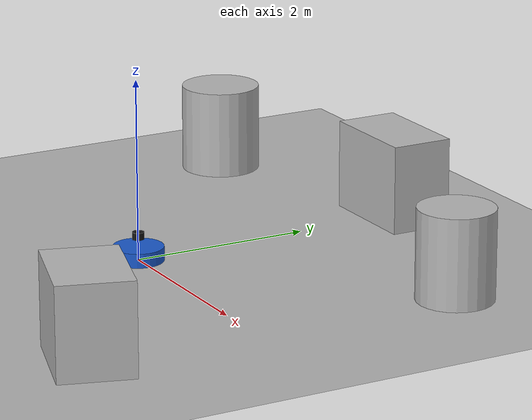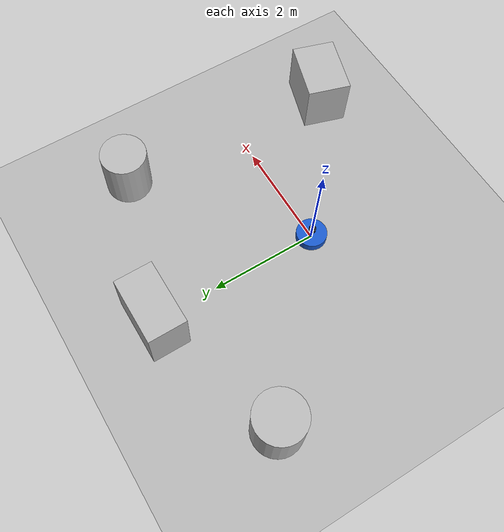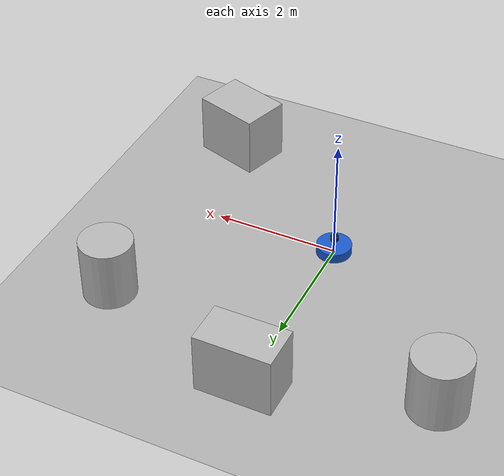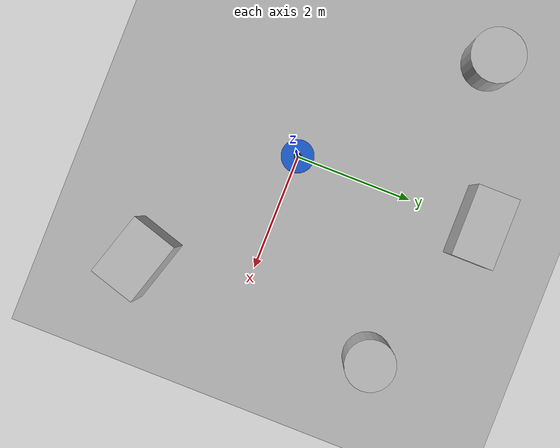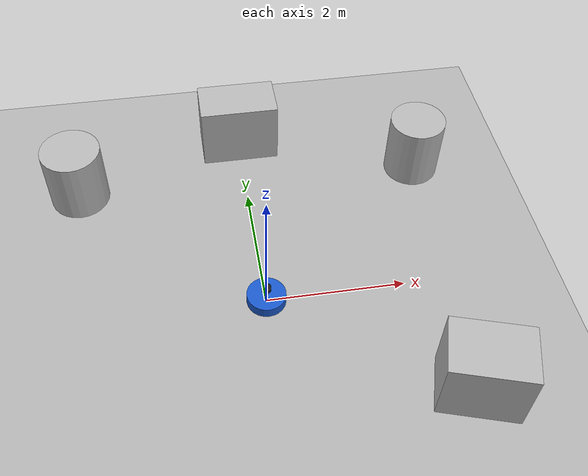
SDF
<?xml version="1.0"?>
<sdf version="1.8">
  <world name="maintenance_world">
    <physics name="1ms" type="ignored">
      <max_step_size>0.001</max_step_size>
      <real_time_factor>1.0</real_time_factor>
    </physics>

    <plugin filename="libignition-gazebo-physics-system.so" name="ignition::gazebo::systems::Physics"/>
    <plugin filename="libignition-gazebo-user-commands-system.so" name="ignition::gazebo::systems::UserCommands"/>
    <plugin filename="libignition-gazebo-scene-broadcaster-system.so" name="ignition::gazebo::systems::SceneBroadcaster"/>
    <plugin filename="libignition-gazebo-sensors-system.so" name="ignition::gazebo::systems::Sensors">
      <render_engine>ogre2</render_engine>
    </plugin>

    <gui fullscreen="0">
      <plugin filename="MinimalScene" name="3D View">
        <ignition-gui>
          <title>3D View</title>
          <property type="bool" key="showTitleBar">false</property>
          <property type="string" key="state">docked</property>
        </ignition-gui>
	<engine>ogre2</engine>
        <scene>scene</scene>
        <ambient_light>0.5 0.5 0.5</ambient_light>
        <background_color>0.75 0.75 0.75</background_color>
        <camera_pose>-6 -6 5 0 0.55 0.78</camera_pose>
      </plugin>
      <plugin filename="WorldControl" name="World control">
        <ignition-gui><property type="string" key="state">floating</property></ignition-gui>
        <play_pause>true</play_pause><step>true</step><start_paused>false</start_paused>
      </plugin>
      <plugin filename="WorldStats" name="World stats">
        <ignition-gui><property type="string" key="state">floating</property></ignition-gui>
        <sim_time>true</sim_time><real_time>true</real_time><real_time_factor>true</real_time_factor><iterations>true</iterations>
      </plugin>
    </gui>

    <light type="directional" name="sun">
      <pose>0 0 10 0 0 0</pose>
      <diffuse>0.8 0.8 0.8 1</diffuse>
      <specular>0.2 0.2 0.2 1</specular>
      <direction>-0.5 0.2 -0.9</direction>
    </light>

    <model name="ground_plane"><static>true</static><link name="link">
      <collision name="collision"><geometry><plane><normal>0 0 1</normal><size>20 20</size></plane></geometry></collision>
      <visual name="visual"><geometry><plane><normal>0 0 1</normal><size>20 20</size></plane></geometry>
        <material><ambient>0.7 0.7 0.7 1</ambient><diffuse>0.7 0.7 0.7 1</diffuse></material></visual>
    </link></model>

    <model name="maintenance_robot"><static>true</static><pose>0 0 0 0 0 0</pose>
      <link name="base_link">
        <collision name="base_collision"><pose>0 0 0.08 0 0 0</pose><geometry><cylinder><radius>0.28</radius><length>0.16</length></cylinder></geometry></collision>
        <visual name="base_visual"><pose>0 0 0.08 0 0 0</pose><geometry><cylinder><radius>0.28</radius><length>0.16</length></cylinder></geometry>
          <material><ambient>0.1 0.35 0.8 1</ambient><diffuse>0.1 0.35 0.8 1</diffuse></material></visual>
      </link>
      <link name="lidar_link"><pose>0 0 0.28 0 0 0</pose>
        <visual name="lidar_visual"><geometry><cylinder><radius>0.065</radius><length>0.08</length></cylinder></geometry>
          <material><ambient>0.08 0.08 0.08 1</ambient><diffuse>0.08 0.08 0.08 1</diffuse></material></visual>
        <sensor name="gpu_lidar" type="gpu_lidar">
          <topic>/lidar_scan</topic>
          <update_rate>10</update_rate>
          <ignition_frame_id>lidar_link</ignition_frame_id>
          <ray><scan><horizontal>
            <samples>360</samples><resolution>1</resolution>
            <min_angle>-3.14159265</min_angle><max_angle>3.14159265</max_angle>
          </horizontal></scan>
          <range><min>0.10</min><max>12.0</max><resolution>0.01</resolution></range></ray>
          <alwaysOn>1</alwaysOn><visualize>true</visualize>
        </sensor>
      </link>
      <joint name="lidar_joint" type="fixed"><parent>base_link</parent><child>lidar_link</child></joint>
    </model>

    <model name="cylinder_left"><static>true</static><pose>-2.6 2.4 0.5 0 0 0</pose><link name="link">
      <collision name="c"><geometry><cylinder><radius>0.45</radius><length>1.0</length></cylinder></geometry></collision>
      <visual name="v"><geometry><cylinder><radius>0.45</radius><length>1.0</length></cylinder></geometry></visual>
    </link></model>
    <model name="box_front"><static>true</static><pose>0 3.2 0.5 0 0 0</pose><link name="link">
      <collision name="c"><geometry><box><size>1.2 0.7 1.0</size></box></geometry></collision>
      <visual name="v"><geometry><box><size>1.2 0.7 1.0</size></box></geometry></visual>
    </link></model>
    <model name="cylinder_right"><static>true</static><pose>2.7 2.3 0.5 0 0 0</pose><link name="link">
      <collision name="c"><geometry><cylinder><radius>0.42</radius><length>1.0</length></cylinder></geometry></collision>
      <visual name="v"><geometry><cylinder><radius>0.42</radius><length>1.0</length></cylinder></geometry></visual>
    </link></model>
    <model name="box_right"><static>true</static><pose>2.5 -1.8 0.5 0 0 -0.3</pose><link name="link">
      <collision name="c"><geometry><box><size>1.1 0.8 1.0</size></box></geometry></collision>
      <visual name="v"><geometry><box><size>1.1 0.8 1.0</size></box></geometry></visual>
    </link></model>
  </world>
</sdf>
